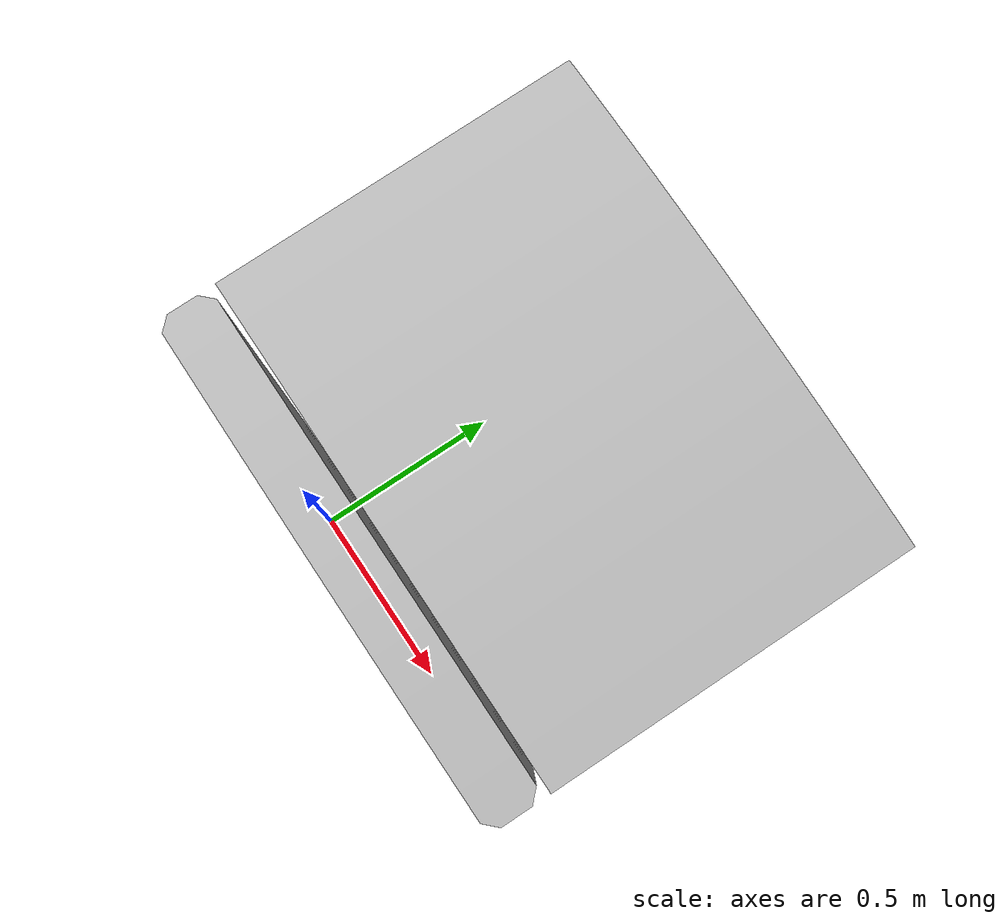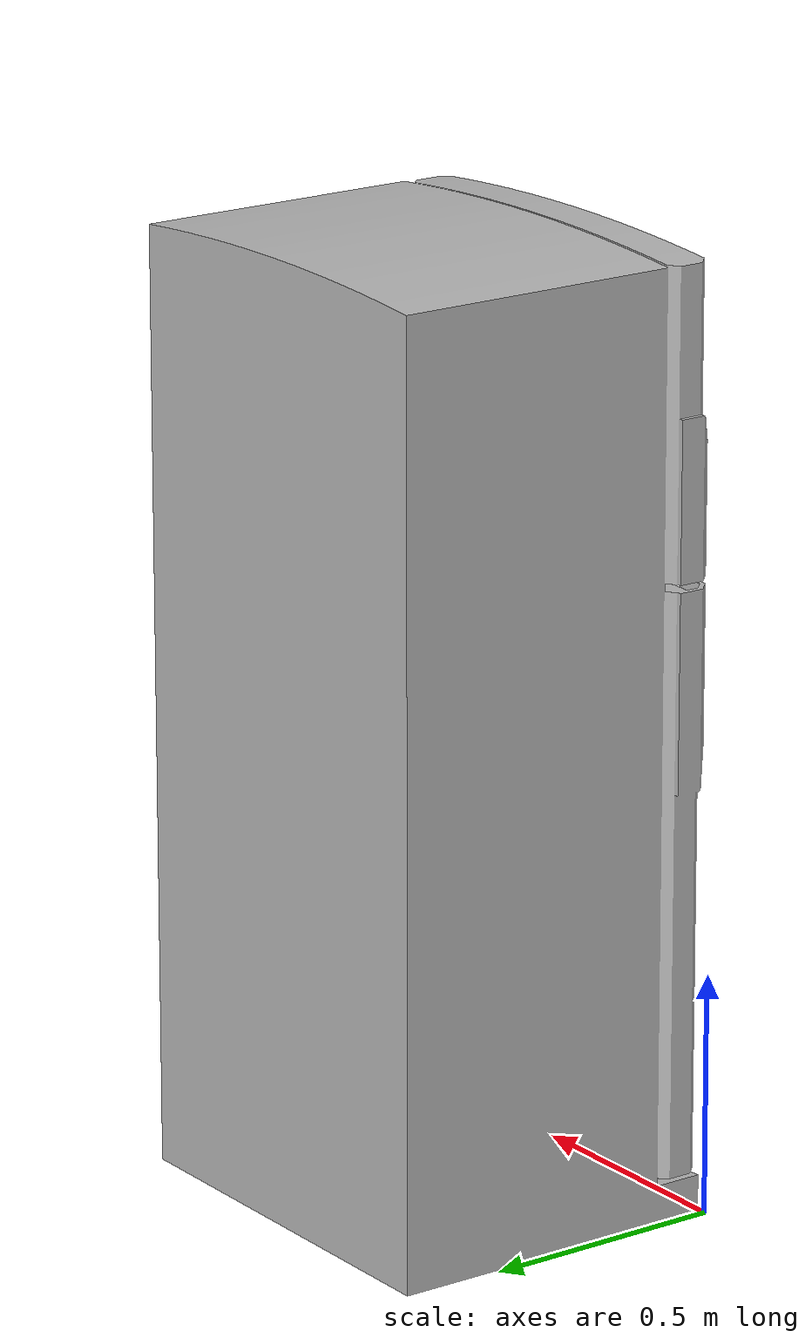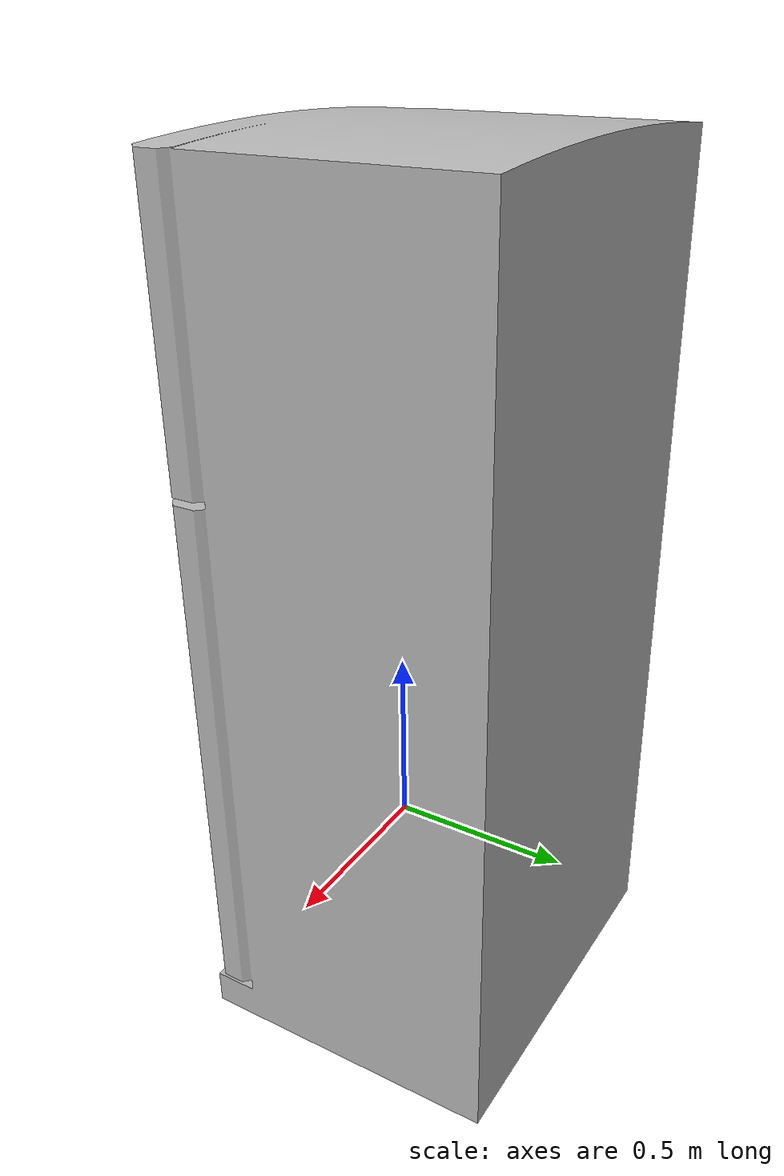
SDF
<?xml version="1.0" ?>
<sdf version="1.5">
  <model name="Fridge">
    <pose> 0 0 0   0 0 0 </pose>
    <static>true</static>
    <link name="base">
      <visual name="visual">
        <geometry>
	  <mesh>
	    <uri>model://fridge/model.dae</uri>
	  </mesh>
	</geometry>
      </visual>
      <collision name="collision">
        <geometry>
          <mesh>
            <uri>model://fridge/model.dae</uri>
          </mesh>
        </geometry>
      </collision>
    </link>
  </model>
</sdf>
